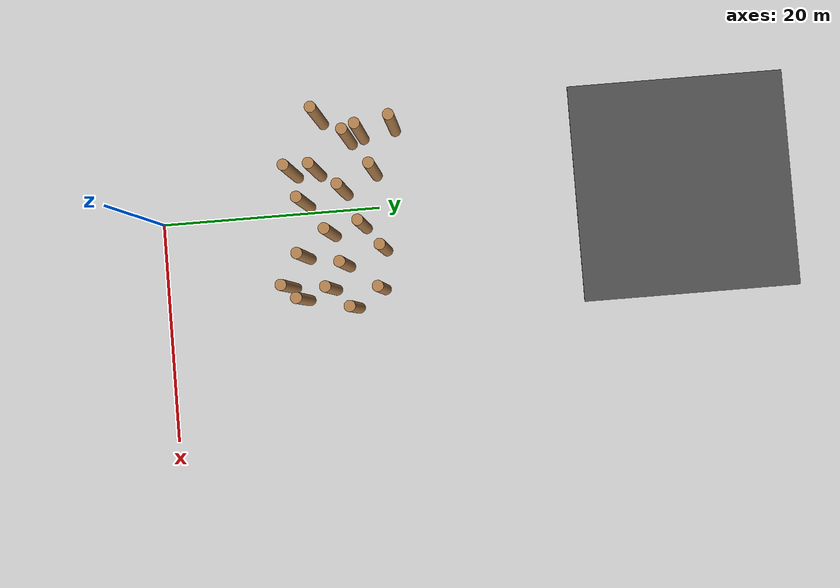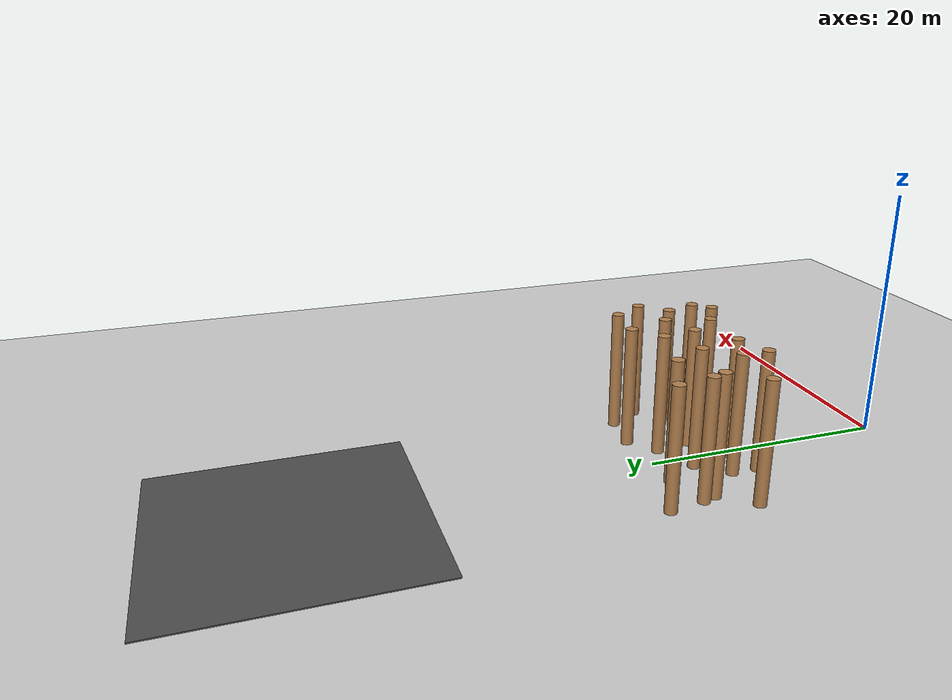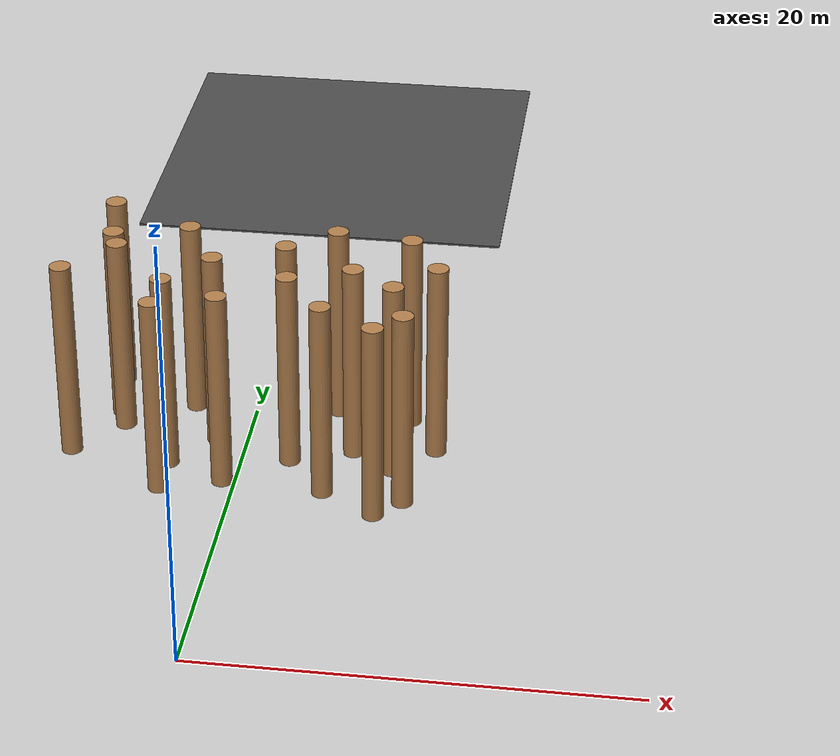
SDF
<sdf version="1.6">
 <world name="default">
  <model name="ground_plane">
   <static>1</static>
   <link name="link">
    <collision name="collision">
     <geometry><plane><normal>0 0 1</normal><size>100 100</size></plane></geometry>
     <surface><friction><ode><mu>100</mu><mu2>50</mu2></ode></friction></surface>
    </collision>
    <visual name="visual">
     <cast_shadows>0</cast_shadows>
     <geometry><plane><normal>0 0 1</normal><size>100 100</size></plane></geometry>
     <material>
      <script><uri>file://media/materials/scripts/gazebo.material</uri><name>Gazebo/Grey</name></script>
     </material>
    </visual>
   </link>
  </model>
  <model name="train_3">
   <link name="link_0_clone_0_clone_11_clone_8">
    <pose>-6.90192 1.15105 0.043478 0 -0 3e-06</pose>
    <inertial>
     <mass>1000</mass>
     <inertia><ixx>0.145833</ixx><ixy>0</ixy><ixz>0</ixz><iyy>0.145833</iyy><iyz>0</iyz><izz>0.125</izz></inertia>
    </inertial>
    <visual name="visual">
     <pose>0 0 4.5 0 -0 0</pose>
     <geometry><cylinder><radius>0.5</radius><length>10</length></cylinder></geometry>
     <material>
      <lighting>1</lighting>
      <script><uri>file://media/materials/scripts/gazebo.material</uri><name>Gazebo/WoodFloor</name></script>
      <ambient>0.3 0.3 0.3 1</ambient>
      <diffuse>0.7 0.7 0.7 1</diffuse>
      <specular>0.01 0.01 0.01 1</specular>
      <emissive>0 0 0 1</emissive>
      <shader type="vertex"><normal_map>__default__</normal_map></shader>
     </material>
    </visual>
    <collision name="collision">
     <pose>0 0 4.5 0 -0 0</pose>
     <geometry><cylinder><radius>0.5</radius><length>10</length></cylinder></geometry>
     <surface>
      <friction>
       <ode><mu>1</mu><mu2>1</mu2><fdir1>0 0 0</fdir1><slip1>0</slip1><slip2>0</slip2></ode>
       <torsional>
        <coefficient>1</coefficient>
        <patch_radius>0</patch_radius>
        <surface_radius>0</surface_radius>
        <use_patch_radius>1</use_patch_radius>
        <ode><slip>0</slip></ode>
       </torsional>
      </friction>
      <bounce><restitution_coefficient>0</restitution_coefficient><threshold>1e+06</threshold></bounce>
      <contact>
       <collide_without_contact>0</collide_without_contact>
       <collide_without_contact_bitmask>1</collide_without_contact_bitmask>
       <collide_bitmask>1</collide_bitmask>
       <ode>
        <soft_cfm>0</soft_cfm>
        <soft_erp>0.2</soft_erp>
        <kp>1e+13</kp>
        <kd>1</kd>
        <max_vel>0.01</max_vel>
        <min_depth>0</min_depth>
       </ode>
       <bullet>
        <split_impulse>1</split_impulse>
        <split_impulse_penetration_threshold>-0.01</split_impulse_penetration_threshold>
        <soft_cfm>0</soft_cfm>
        <soft_erp>0.2</soft_erp>
        <kp>1e+13</kp>
        <kd>1</kd>
       </bullet>
      </contact>
     </surface>
    </collision>
   </link>
   <link name="link_0_clone_0_clone_5_clone_12">
    <pose>3.06332 4.4517 0.043478 0 -0 3e-06</pose>
    <inertial>
     <mass>1000</mass>
     <inertia><ixx>0.145833</ixx><ixy>0</ixy><ixz>0</ixz><iyy>0.145833</iyy><iyz>0</iyz><izz>0.125</izz></inertia>
    </inertial>
    <visual name="visual">
     <pose>0 0 4.5 0 -0 0</pose>
     <geometry><cylinder><radius>0.5</radius><length>10</length></cylinder></geometry>
     <material>
      <lighting>1</lighting>
      <script><uri>file://media/materials/scripts/gazebo.material</uri><name>Gazebo/WoodFloor</name></script>
      <ambient>0.3 0.3 0.3 1</ambient>
      <diffuse>0.7 0.7 0.7 1</diffuse>
      <specular>0.01 0.01 0.01 1</specular>
      <emissive>0 0 0 1</emissive>
      <shader type="vertex"><normal_map>__default__</normal_map></shader>
     </material>
    </visual>
    <collision name="collision">
     <pose>0 0 4.5 0 -0 0</pose>
     <geometry><cylinder><radius>0.5</radius><length>10</length></cylinder></geometry>
     <surface>
      <friction>
       <ode><mu>1</mu><mu2>1</mu2><fdir1>0 0 0</fdir1><slip1>0</slip1><slip2>0</slip2></ode>
       <torsional>
        <coefficient>1</coefficient>
        <patch_radius>0</patch_radius>
        <surface_radius>0</surface_radius>
        <use_patch_radius>1</use_patch_radius>
        <ode><slip>0</slip></ode>
       </torsional>
      </friction>
      <bounce><restitution_coefficient>0</restitution_coefficient><threshold>1e+06</threshold></bounce>
      <contact>
       <collide_without_contact>0</collide_without_contact>
       <collide_without_contact_bitmask>1</collide_without_contact_bitmask>
       <collide_bitmask>1</collide_bitmask>
       <ode>
        <soft_cfm>0</soft_cfm>
        <soft_erp>0.2</soft_erp>
        <kp>1e+13</kp>
        <kd>1</kd>
        <max_vel>0.01</max_vel>
        <min_depth>0</min_depth>
       </ode>
       <bullet>
        <split_impulse>1</split_impulse>
        <split_impulse_penetration_threshold>-0.01</split_impulse_penetration_threshold>
        <soft_cfm>0</soft_cfm>
        <soft_erp>0.2</soft_erp>
        <kp>1e+13</kp>
        <kd>1</kd>
       </bullet>
      </contact>
     </surface>
    </collision>
   </link>
   <link name="link_0_clone_0_clone_5_clone_19_clone_10">
    <pose>-5.21019 4.79116 0.043478 0 -0 6e-06</pose>
    <inertial>
     <mass>1000</mass>
     <inertia><ixx>0.145833</ixx><ixy>0</ixy><ixz>0</ixz><iyy>0.145833</iyy><iyz>0</iyz><izz>0.125</izz></inertia>
    </inertial>
    <visual name="visual">
     <pose>0 0 4.5 0 -0 0</pose>
     <geometry><cylinder><radius>0.5</radius><length>10</length></cylinder></geometry>
     <material>
      <lighting>1</lighting>
      <script><uri>file://media/materials/scripts/gazebo.material</uri><name>Gazebo/WoodFloor</name></script>
      <ambient>0.3 0.3 0.3 1</ambient>
      <diffuse>0.7 0.7 0.7 1</diffuse>
      <specular>0.01 0.01 0.01 1</specular>
      <emissive>0 0 0 1</emissive>
      <shader type="vertex"><normal_map>__default__</normal_map></shader>
     </material>
    </visual>
    <collision name="collision">
     <pose>0 0 4.5 0 -0 0</pose>
     <geometry><cylinder><radius>0.5</radius><length>10</length></cylinder></geometry>
     <surface>
      <friction>
       <ode><mu>1</mu><mu2>1</mu2><fdir1>0 0 0</fdir1><slip1>0</slip1><slip2>0</slip2></ode>
       <torsional>
        <coefficient>1</coefficient>
        <patch_radius>0</patch_radius>
        <surface_radius>0</surface_radius>
        <use_patch_radius>1</use_patch_radius>
        <ode><slip>0</slip></ode>
       </torsional>
      </friction>
      <bounce><restitution_coefficient>0</restitution_coefficient><threshold>1e+06</threshold></bounce>
      <contact>
       <collide_without_contact>0</collide_without_contact>
       <collide_without_contact_bitmask>1</collide_without_contact_bitmask>
       <collide_bitmask>1</collide_bitmask>
       <ode>
        <soft_cfm>0</soft_cfm>
        <soft_erp>0.2</soft_erp>
        <kp>1e+13</kp>
        <kd>1</kd>
        <max_vel>0.01</max_vel>
        <min_depth>0</min_depth>
       </ode>
       <bullet>
        <split_impulse>1</split_impulse>
        <split_impulse_penetration_threshold>-0.01</split_impulse_penetration_threshold>
        <soft_cfm>0</soft_cfm>
        <soft_erp>0.2</soft_erp>
        <kp>1e+13</kp>
        <kd>1</kd>
       </bullet>
      </contact>
     </surface>
    </collision>
   </link>
   <link name="link_0_clone_0_clone_5_clone_19_clone_11">
    <pose>-4.81689 3.68 0.043478 0 -0 6e-06</pose>
    <inertial>
     <mass>1000</mass>
     <inertia><ixx>0.145833</ixx><ixy>0</ixy><ixz>0</ixz><iyy>0.145833</iyy><iyz>0</iyz><izz>0.125</izz></inertia>
    </inertial>
    <visual name="visual">
     <pose>0 0 4.5 0 -0 0</pose>
     <geometry><cylinder><radius>0.5</radius><length>10</length></cylinder></geometry>
     <material>
      <lighting>1</lighting>
      <script><uri>file://media/materials/scripts/gazebo.material</uri><name>Gazebo/WoodFloor</name></script>
      <ambient>0.3 0.3 0.3 1</ambient>
      <diffuse>0.7 0.7 0.7 1</diffuse>
      <specular>0.01 0.01 0.01 1</specular>
      <emissive>0 0 0 1</emissive>
      <shader type="vertex"><normal_map>__default__</normal_map></shader>
     </material>
    </visual>
    <collision name="collision">
     <pose>0 0 4.5 0 -0 0</pose>
     <geometry><cylinder><radius>0.5</radius><length>10</length></cylinder></geometry>
     <surface>
      <friction>
       <ode><mu>1</mu><mu2>1</mu2><fdir1>0 0 0</fdir1><slip1>0</slip1><slip2>0</slip2></ode>
       <torsional>
        <coefficient>1</coefficient>
        <patch_radius>0</patch_radius>
        <surface_radius>0</surface_radius>
        <use_patch_radius>1</use_patch_radius>
        <ode><slip>0</slip></ode>
       </torsional>
      </friction>
      <bounce><restitution_coefficient>0</restitution_coefficient><threshold>1e+06</threshold></bounce>
      <contact>
       <collide_without_contact>0</collide_without_contact>
       <collide_without_contact_bitmask>1</collide_without_contact_bitmask>
       <collide_bitmask>1</collide_bitmask>
       <ode>
        <soft_cfm>0</soft_cfm>
        <soft_erp>0.2</soft_erp>
        <kp>1e+13</kp>
        <kd>1</kd>
        <max_vel>0.01</max_vel>
        <min_depth>0</min_depth>
       </ode>
       <bullet>
        <split_impulse>1</split_impulse>
        <split_impulse_penetration_threshold>-0.01</split_impulse_penetration_threshold>
        <soft_cfm>0</soft_cfm>
        <soft_erp>0.2</soft_erp>
        <kp>1e+13</kp>
        <kd>1</kd>
       </bullet>
      </contact>
     </surface>
    </collision>
   </link>
   <link name="link_0_clone_0_clone_5_clone_19_clone_13">
    <pose>5.27392 6.1772 0.043478 0 -0 6e-06</pose>
    <inertial>
     <mass>1000</mass>
     <inertia><ixx>0.145833</ixx><ixy>0</ixy><ixz>0</ixz><iyy>0.145833</iyy><iyz>0</iyz><izz>0.125</izz></inertia>
    </inertial>
    <visual name="visual">
     <pose>0 0 4.5 0 -0 0</pose>
     <geometry><cylinder><radius>0.5</radius><length>10</length></cylinder></geometry>
     <material>
      <lighting>1</lighting>
      <script><uri>file://media/materials/scripts/gazebo.material</uri><name>Gazebo/WoodFloor</name></script>
      <ambient>0.3 0.3 0.3 1</ambient>
      <diffuse>0.7 0.7 0.7 1</diffuse>
      <specular>0.01 0.01 0.01 1</specular>
      <emissive>0 0 0 1</emissive>
      <shader type="vertex"><normal_map>__default__</normal_map></shader>
     </material>
    </visual>
    <collision name="collision">
     <pose>0 0 4.5 0 -0 0</pose>
     <geometry><cylinder><radius>0.5</radius><length>10</length></cylinder></geometry>
     <surface>
      <friction>
       <ode><mu>1</mu><mu2>1</mu2><fdir1>0 0 0</fdir1><slip1>0</slip1><slip2>0</slip2></ode>
       <torsional>
        <coefficient>1</coefficient>
        <patch_radius>0</patch_radius>
        <surface_radius>0</surface_radius>
        <use_patch_radius>1</use_patch_radius>
        <ode><slip>0</slip></ode>
       </torsional>
      </friction>
      <bounce><restitution_coefficient>0</restitution_coefficient><threshold>1e+06</threshold></bounce>
      <contact>
       <collide_without_contact>0</collide_without_contact>
       <collide_without_contact_bitmask>1</collide_without_contact_bitmask>
       <collide_bitmask>1</collide_bitmask>
       <ode>
        <soft_cfm>0</soft_cfm>
        <soft_erp>0.2</soft_erp>
        <kp>1e+13</kp>
        <kd>1</kd>
        <max_vel>0.01</max_vel>
        <min_depth>0</min_depth>
       </ode>
       <bullet>
        <split_impulse>1</split_impulse>
        <split_impulse_penetration_threshold>-0.01</split_impulse_penetration_threshold>
        <soft_cfm>0</soft_cfm>
        <soft_erp>0.2</soft_erp>
        <kp>1e+13</kp>
        <kd>1</kd>
       </bullet>
      </contact>
     </surface>
    </collision>
   </link>
   <link name="link_0_clone_0_clone_5_clone_19_clone_15">
    <pose>8.82989 5.75323 0.043478 0 -0 6e-06</pose>
    <inertial>
     <mass>1000</mass>
     <inertia><ixx>0.145833</ixx><ixy>0</ixy><ixz>0</ixz><iyy>0.145833</iyy><iyz>0</iyz><izz>0.125</izz></inertia>
    </inertial>
    <visual name="visual">
     <pose>0 0 4.5 0 -0 0</pose>
     <geometry><cylinder><radius>0.5</radius><length>10</length></cylinder></geometry>
     <material>
      <lighting>1</lighting>
      <script><uri>file://media/materials/scripts/gazebo.material</uri><name>Gazebo/WoodFloor</name></script>
      <ambient>0.3 0.3 0.3 1</ambient>
      <diffuse>0.7 0.7 0.7 1</diffuse>
      <specular>0.01 0.01 0.01 1</specular>
      <emissive>0 0 0 1</emissive>
      <shader type="vertex"><normal_map>__default__</normal_map></shader>
     </material>
    </visual>
    <collision name="collision">
     <pose>0 0 4.5 0 -0 0</pose>
     <geometry><cylinder><radius>0.5</radius><length>10</length></cylinder></geometry>
     <surface>
      <friction>
       <ode><mu>1</mu><mu2>1</mu2><fdir1>0 0 0</fdir1><slip1>0</slip1><slip2>0</slip2></ode>
       <torsional>
        <coefficient>1</coefficient>
        <patch_radius>0</patch_radius>
        <surface_radius>0</surface_radius>
        <use_patch_radius>1</use_patch_radius>
        <ode><slip>0</slip></ode>
       </torsional>
      </friction>
      <bounce><restitution_coefficient>0</restitution_coefficient><threshold>1e+06</threshold></bounce>
      <contact>
       <collide_without_contact>0</collide_without_contact>
       <collide_without_contact_bitmask>1</collide_without_contact_bitmask>
       <collide_bitmask>1</collide_bitmask>
       <ode>
        <soft_cfm>0</soft_cfm>
        <soft_erp>0.2</soft_erp>
        <kp>1e+13</kp>
        <kd>1</kd>
        <max_vel>0.01</max_vel>
        <min_depth>0</min_depth>
       </ode>
       <bullet>
        <split_impulse>1</split_impulse>
        <split_impulse_penetration_threshold>-0.01</split_impulse_penetration_threshold>
        <soft_cfm>0</soft_cfm>
        <soft_erp>0.2</soft_erp>
        <kp>1e+13</kp>
        <kd>1</kd>
       </bullet>
      </contact>
     </surface>
    </collision>
   </link>
   <link name="link_0_clone_0_clone_5_clone_19_clone_18">
    <pose>10.335 3.24333 0.043478 0 -0 6e-06</pose>
    <inertial>
     <mass>1000</mass>
     <inertia><ixx>0.145833</ixx><ixy>0</ixy><ixz>0</ixz><iyy>0.145833</iyy><iyz>0</iyz><izz>0.125</izz></inertia>
    </inertial>
    <visual name="visual">
     <pose>0 0 4.5 0 -0 0</pose>
     <geometry><cylinder><radius>0.5</radius><length>10</length></cylinder></geometry>
     <material>
      <lighting>1</lighting>
      <script><uri>file://media/materials/scripts/gazebo.material</uri><name>Gazebo/WoodFloor</name></script>
      <ambient>0.3 0.3 0.3 1</ambient>
      <diffuse>0.7 0.7 0.7 1</diffuse>
      <specular>0.01 0.01 0.01 1</specular>
      <emissive>0 0 0 1</emissive>
      <shader type="vertex"><normal_map>__default__</normal_map></shader>
     </material>
    </visual>
    <collision name="collision">
     <pose>0 0 4.5 0 -0 0</pose>
     <geometry><cylinder><radius>0.5</radius><length>10</length></cylinder></geometry>
     <surface>
      <friction>
       <ode><mu>1</mu><mu2>1</mu2><fdir1>0 0 0</fdir1><slip1>0</slip1><slip2>0</slip2></ode>
       <torsional>
        <coefficient>1</coefficient>
        <patch_radius>0</patch_radius>
        <surface_radius>0</surface_radius>
        <use_patch_radius>1</use_patch_radius>
        <ode><slip>0</slip></ode>
       </torsional>
      </friction>
      <bounce><restitution_coefficient>0</restitution_coefficient><threshold>1e+06</threshold></bounce>
      <contact>
       <collide_without_contact>0</collide_without_contact>
       <collide_without_contact_bitmask>1</collide_without_contact_bitmask>
       <collide_bitmask>1</collide_bitmask>
       <ode>
        <soft_cfm>0</soft_cfm>
        <soft_erp>0.2</soft_erp>
        <kp>1e+13</kp>
        <kd>1</kd>
        <max_vel>0.01</max_vel>
        <min_depth>0</min_depth>
       </ode>
       <bullet>
        <split_impulse>1</split_impulse>
        <split_impulse_penetration_threshold>-0.01</split_impulse_penetration_threshold>
        <soft_cfm>0</soft_cfm>
        <soft_erp>0.2</soft_erp>
        <kp>1e+13</kp>
        <kd>1</kd>
       </bullet>
      </contact>
     </surface>
    </collision>
   </link>
   <link name="link_0_clone_0_clone_5_clone_19_clone_31">
    <pose>9.27394 -1.24677 0.043478 0 -0 6e-06</pose>
    <inertial>
     <mass>1000</mass>
     <inertia><ixx>0.145833</ixx><ixy>0</ixy><ixz>0</ixz><iyy>0.145833</iyy><iyz>0</iyz><izz>0.125</izz></inertia>
    </inertial>
    <visual name="visual">
     <pose>0 0 4.5 0 -0 0</pose>
     <geometry><cylinder><radius>0.5</radius><length>10</length></cylinder></geometry>
     <material>
      <lighting>1</lighting>
      <script><uri>file://media/materials/scripts/gazebo.material</uri><name>Gazebo/WoodFloor</name></script>
      <ambient>0.3 0.3 0.3 1</ambient>
      <diffuse>0.7 0.7 0.7 1</diffuse>
      <specular>0.01 0.01 0.01 1</specular>
      <emissive>0 0 0 1</emissive>
      <shader type="vertex"><normal_map>__default__</normal_map></shader>
     </material>
    </visual>
    <collision name="collision">
     <pose>0 0 4.5 0 -0 0</pose>
     <geometry><cylinder><radius>0.5</radius><length>10</length></cylinder></geometry>
     <surface>
      <friction>
       <ode><mu>1</mu><mu2>1</mu2><fdir1>0 0 0</fdir1><slip1>0</slip1><slip2>0</slip2></ode>
       <torsional>
        <coefficient>1</coefficient>
        <patch_radius>0</patch_radius>
        <surface_radius>0</surface_radius>
        <use_patch_radius>1</use_patch_radius>
        <ode><slip>0</slip></ode>
       </torsional>
      </friction>
      <bounce><restitution_coefficient>0</restitution_coefficient><threshold>1e+06</threshold></bounce>
      <contact>
       <collide_without_contact>0</collide_without_contact>
       <collide_without_contact_bitmask>1</collide_without_contact_bitmask>
       <collide_bitmask>1</collide_bitmask>
       <ode>
        <soft_cfm>0</soft_cfm>
        <soft_erp>0.2</soft_erp>
        <kp>1e+13</kp>
        <kd>1</kd>
        <max_vel>0.01</max_vel>
        <min_depth>0</min_depth>
       </ode>
       <bullet>
        <split_impulse>1</split_impulse>
        <split_impulse_penetration_threshold>-0.01</split_impulse_penetration_threshold>
        <soft_cfm>0</soft_cfm>
        <soft_erp>0.2</soft_erp>
        <kp>1e+13</kp>
        <kd>1</kd>
       </bullet>
      </contact>
     </surface>
    </collision>
   </link>
   <link name="link_0_clone_0_clone_5_clone_19_clone_32">
    <pose>8.50917 1.28403 0.043478 0 -0 6e-06</pose>
    <inertial>
     <mass>1000</mass>
     <inertia><ixx>0.145833</ixx><ixy>0</ixy><ixz>0</ixz><iyy>0.145833</iyy><iyz>0</iyz><izz>0.125</izz></inertia>
    </inertial>
    <visual name="visual">
     <pose>0 0 4.5 0 -0 0</pose>
     <geometry><cylinder><radius>0.5</radius><length>10</length></cylinder></geometry>
     <material>
      <lighting>1</lighting>
      <script><uri>file://media/materials/scripts/gazebo.material</uri><name>Gazebo/WoodFloor</name></script>
      <ambient>0.3 0.3 0.3 1</ambient>
      <diffuse>0.7 0.7 0.7 1</diffuse>
      <specular>0.01 0.01 0.01 1</specular>
      <emissive>0 0 0 1</emissive>
      <shader type="vertex"><normal_map>__default__</normal_map></shader>
     </material>
    </visual>
    <collision name="collision">
     <pose>0 0 4.5 0 -0 0</pose>
     <geometry><cylinder><radius>0.5</radius><length>10</length></cylinder></geometry>
     <surface>
      <friction>
       <ode><mu>1</mu><mu2>1</mu2><fdir1>0 0 0</fdir1><slip1>0</slip1><slip2>0</slip2></ode>
       <torsional>
        <coefficient>1</coefficient>
        <patch_radius>0</patch_radius>
        <surface_radius>0</surface_radius>
        <use_patch_radius>1</use_patch_radius>
        <ode><slip>0</slip></ode>
       </torsional>
      </friction>
      <bounce><restitution_coefficient>0</restitution_coefficient><threshold>1e+06</threshold></bounce>
      <contact>
       <collide_without_contact>0</collide_without_contact>
       <collide_without_contact_bitmask>1</collide_without_contact_bitmask>
       <collide_bitmask>1</collide_bitmask>
       <ode>
        <soft_cfm>0</soft_cfm>
        <soft_erp>0.2</soft_erp>
        <kp>1e+13</kp>
        <kd>1</kd>
        <max_vel>0.01</max_vel>
        <min_depth>0</min_depth>
       </ode>
       <bullet>
        <split_impulse>1</split_impulse>
        <split_impulse_penetration_threshold>-0.01</split_impulse_penetration_threshold>
        <soft_cfm>0</soft_cfm>
        <soft_erp>0.2</soft_erp>
        <kp>1e+13</kp>
        <kd>1</kd>
       </bullet>
      </contact>
     </surface>
    </collision>
   </link>
   <link name="link_0_clone_0_clone_5_clone_21">
    <pose>0.690093 -0.614865 0.043478 0 -0 3e-06</pose>
    <inertial>
     <mass>1000</mass>
     <inertia><ixx>0.145833</ixx><ixy>0</ixy><ixz>0</ixz><iyy>0.145833</iyy><iyz>0</iyz><izz>0.125</izz></inertia>
    </inertial>
    <visual name="visual">
     <pose>0 0 4.5 0 -0 0</pose>
     <geometry><cylinder><radius>0.5</radius><length>10</length></cylinder></geometry>
     <material>
      <lighting>1</lighting>
      <script><uri>file://media/materials/scripts/gazebo.material</uri><name>Gazebo/WoodFloor</name></script>
      <ambient>0.3 0.3 0.3 1</ambient>
      <diffuse>0.7 0.7 0.7 1</diffuse>
      <specular>0.01 0.01 0.01 1</specular>
      <emissive>0 0 0 1</emissive>
      <shader type="vertex"><normal_map>__default__</normal_map></shader>
     </material>
    </visual>
    <collision name="collision">
     <pose>0 0 4.5 0 -0 0</pose>
     <geometry><cylinder><radius>0.5</radius><length>10</length></cylinder></geometry>
     <surface>
      <friction>
       <ode><mu>1</mu><mu2>1</mu2><fdir1>0 0 0</fdir1><slip1>0</slip1><slip2>0</slip2></ode>
       <torsional>
        <coefficient>1</coefficient>
        <patch_radius>0</patch_radius>
        <surface_radius>0</surface_radius>
        <use_patch_radius>1</use_patch_radius>
        <ode><slip>0</slip></ode>
       </torsional>
      </friction>
      <bounce><restitution_coefficient>0</restitution_coefficient><threshold>1e+06</threshold></bounce>
      <contact>
       <collide_without_contact>0</collide_without_contact>
       <collide_without_contact_bitmask>1</collide_without_contact_bitmask>
       <collide_bitmask>1</collide_bitmask>
       <ode>
        <soft_cfm>0</soft_cfm>
        <soft_erp>0.2</soft_erp>
        <kp>1e+13</kp>
        <kd>1</kd>
        <max_vel>0.01</max_vel>
        <min_depth>0</min_depth>
       </ode>
       <bullet>
        <split_impulse>1</split_impulse>
        <split_impulse_penetration_threshold>-0.01</split_impulse_penetration_threshold>
        <soft_cfm>0</soft_cfm>
        <soft_erp>0.2</soft_erp>
        <kp>1e+13</kp>
        <kd>1</kd>
       </bullet>
      </contact>
     </surface>
    </collision>
   </link>
   <link name="link_0_clone_0_clone_5_clone_22">
    <pose>8.06962 -2.47589 0.043478 0 -0 3e-06</pose>
    <inertial>
     <mass>1000</mass>
     <inertia><ixx>0.145833</ixx><ixy>0</ixy><ixz>0</ixz><iyy>0.145833</iyy><iyz>0</iyz><izz>0.125</izz></inertia>
    </inertial>
    <visual name="visual">
     <pose>0 0 4.5 0 -0 0</pose>
     <geometry><cylinder><radius>0.5</radius><length>10</length></cylinder></geometry>
     <material>
      <lighting>1</lighting>
      <script><uri>file://media/materials/scripts/gazebo.material</uri><name>Gazebo/WoodFloor</name></script>
      <ambient>0.3 0.3 0.3 1</ambient>
      <diffuse>0.7 0.7 0.7 1</diffuse>
      <specular>0.01 0.01 0.01 1</specular>
      <emissive>0 0 0 1</emissive>
      <shader type="vertex"><normal_map>__default__</normal_map></shader>
     </material>
    </visual>
    <collision name="collision">
     <pose>0 0 4.5 0 -0 0</pose>
     <geometry><cylinder><radius>0.5</radius><length>10</length></cylinder></geometry>
     <surface>
      <friction>
       <ode><mu>1</mu><mu2>1</mu2><fdir1>0 0 0</fdir1><slip1>0</slip1><slip2>0</slip2></ode>
       <torsional>
        <coefficient>1</coefficient>
        <patch_radius>0</patch_radius>
        <surface_radius>0</surface_radius>
        <use_patch_radius>1</use_patch_radius>
        <ode><slip>0</slip></ode>
       </torsional>
      </friction>
      <bounce><restitution_coefficient>0</restitution_coefficient><threshold>1e+06</threshold></bounce>
      <contact>
       <collide_without_contact>0</collide_without_contact>
       <collide_without_contact_bitmask>1</collide_without_contact_bitmask>
       <collide_bitmask>1</collide_bitmask>
       <ode>
        <soft_cfm>0</soft_cfm>
        <soft_erp>0.2</soft_erp>
        <kp>1e+13</kp>
        <kd>1</kd>
        <max_vel>0.01</max_vel>
        <min_depth>0</min_depth>
       </ode>
       <bullet>
        <split_impulse>1</split_impulse>
        <split_impulse_penetration_threshold>-0.01</split_impulse_penetration_threshold>
        <soft_cfm>0</soft_cfm>
        <soft_erp>0.2</soft_erp>
        <kp>1e+13</kp>
        <kd>1</kd>
       </bullet>
      </contact>
     </surface>
    </collision>
   </link>
   <link name="link_0_clone_0_clone_5_clone_6">
    <pose>-2.10439 0.622832 0.043478 0 -0 3e-06</pose>
    <inertial>
     <mass>1000</mass>
     <inertia><ixx>0.145833</ixx><ixy>0</ixy><ixz>0</ixz><iyy>0.145833</iyy><iyz>0</iyz><izz>0.125</izz></inertia>
    </inertial>
    <visual name="visual">
     <pose>0 0 4.5 0 -0 0</pose>
     <geometry><cylinder><radius>0.5</radius><length>10</length></cylinder></geometry>
     <material>
      <lighting>1</lighting>
      <script><uri>file://media/materials/scripts/gazebo.material</uri><name>Gazebo/WoodFloor</name></script>
      <ambient>0.3 0.3 0.3 1</ambient>
      <diffuse>0.7 0.7 0.7 1</diffuse>
      <specular>0.01 0.01 0.01 1</specular>
      <emissive>0 0 0 1</emissive>
      <shader type="vertex"><normal_map>__default__</normal_map></shader>
     </material>
    </visual>
    <collision name="collision">
     <pose>0 0 4.5 0 -0 0</pose>
     <geometry><cylinder><radius>0.5</radius><length>10</length></cylinder></geometry>
     <surface>
      <friction>
       <ode><mu>1</mu><mu2>1</mu2><fdir1>0 0 0</fdir1><slip1>0</slip1><slip2>0</slip2></ode>
       <torsional>
        <coefficient>1</coefficient>
        <patch_radius>0</patch_radius>
        <surface_radius>0</surface_radius>
        <use_patch_radius>1</use_patch_radius>
        <ode><slip>0</slip></ode>
       </torsional>
      </friction>
      <bounce><restitution_coefficient>0</restitution_coefficient><threshold>1e+06</threshold></bounce>
      <contact>
       <collide_without_contact>0</collide_without_contact>
       <collide_without_contact_bitmask>1</collide_without_contact_bitmask>
       <collide_bitmask>1</collide_bitmask>
       <ode>
        <soft_cfm>0</soft_cfm>
        <soft_erp>0.2</soft_erp>
        <kp>1e+13</kp>
        <kd>1</kd>
        <max_vel>0.01</max_vel>
        <min_depth>0</min_depth>
       </ode>
       <bullet>
        <split_impulse>1</split_impulse>
        <split_impulse_penetration_threshold>-0.01</split_impulse_penetration_threshold>
        <soft_cfm>0</soft_cfm>
        <soft_erp>0.2</soft_erp>
        <kp>1e+13</kp>
        <kd>1</kd>
       </bullet>
      </contact>
     </surface>
    </collision>
   </link>
   <link name="link_0_clone_0_clone_5_clone_6_clone_11">
    <pose>6.46647 2.65582 0.043478 0 -0 6e-06</pose>
    <inertial>
     <mass>1000</mass>
     <inertia><ixx>0.145833</ixx><ixy>0</ixy><ixz>0</ixz><iyy>0.145833</iyy><iyz>0</iyz><izz>0.125</izz></inertia>
    </inertial>
    <visual name="visual">
     <pose>0 0 4.5 0 -0 0</pose>
     <geometry><cylinder><radius>0.5</radius><length>10</length></cylinder></geometry>
     <material>
      <lighting>1</lighting>
      <script><uri>file://media/materials/scripts/gazebo.material</uri><name>Gazebo/WoodFloor</name></script>
      <ambient>0.3 0.3 0.3 1</ambient>
      <diffuse>0.7 0.7 0.7 1</diffuse>
      <specular>0.01 0.01 0.01 1</specular>
      <emissive>0 0 0 1</emissive>
      <shader type="vertex"><normal_map>__default__</normal_map></shader>
     </material>
    </visual>
    <collision name="collision">
     <pose>0 0 4.5 0 -0 0</pose>
     <geometry><cylinder><radius>0.5</radius><length>10</length></cylinder></geometry>
     <surface>
      <friction>
       <ode><mu>1</mu><mu2>1</mu2><fdir1>0 0 0</fdir1><slip1>0</slip1><slip2>0</slip2></ode>
       <torsional>
        <coefficient>1</coefficient>
        <patch_radius>0</patch_radius>
        <surface_radius>0</surface_radius>
        <use_patch_radius>1</use_patch_radius>
        <ode><slip>0</slip></ode>
       </torsional>
      </friction>
      <bounce><restitution_coefficient>0</restitution_coefficient><threshold>1e+06</threshold></bounce>
      <contact>
       <collide_without_contact>0</collide_without_contact>
       <collide_without_contact_bitmask>1</collide_without_contact_bitmask>
       <collide_bitmask>1</collide_bitmask>
       <ode>
        <soft_cfm>0</soft_cfm>
        <soft_erp>0.2</soft_erp>
        <kp>1e+13</kp>
        <kd>1</kd>
        <max_vel>0.01</max_vel>
        <min_depth>0</min_depth>
       </ode>
       <bullet>
        <split_impulse>1</split_impulse>
        <split_impulse_penetration_threshold>-0.01</split_impulse_penetration_threshold>
        <soft_cfm>0</soft_cfm>
        <soft_erp>0.2</soft_erp>
        <kp>1e+13</kp>
        <kd>1</kd>
       </bullet>
      </contact>
     </surface>
    </collision>
   </link>
   <link name="link_0_clone_0_clone_5_clone_6_clone_12">
    <pose>3.56406 1.54146 0.043478 0 -0 6e-06</pose>
    <inertial>
     <mass>1000</mass>
     <inertia><ixx>0.145833</ixx><ixy>0</ixy><ixz>0</ixz><iyy>0.145833</iyy><iyz>0</iyz><izz>0.125</izz></inertia>
    </inertial>
    <visual name="visual">
     <pose>0 0 4.5 0 -0 0</pose>
     <geometry><cylinder><radius>0.5</radius><length>10</length></cylinder></geometry>
     <material>
      <lighting>1</lighting>
      <script><uri>file://media/materials/scripts/gazebo.material</uri><name>Gazebo/WoodFloor</name></script>
      <ambient>0.3 0.3 0.3 1</ambient>
      <diffuse>0.7 0.7 0.7 1</diffuse>
      <specular>0.01 0.01 0.01 1</specular>
      <emissive>0 0 0 1</emissive>
      <shader type="vertex"><normal_map>__default__</normal_map></shader>
     </material>
    </visual>
    <collision name="collision">
     <pose>0 0 4.5 0 -0 0</pose>
     <geometry><cylinder><radius>0.5</radius><length>10</length></cylinder></geometry>
     <surface>
      <friction>
       <ode><mu>1</mu><mu2>1</mu2><fdir1>0 0 0</fdir1><slip1>0</slip1><slip2>0</slip2></ode>
       <torsional>
        <coefficient>1</coefficient>
        <patch_radius>0</patch_radius>
        <surface_radius>0</surface_radius>
        <use_patch_radius>1</use_patch_radius>
        <ode><slip>0</slip></ode>
       </torsional>
      </friction>
      <bounce><restitution_coefficient>0</restitution_coefficient><threshold>1e+06</threshold></bounce>
      <contact>
       <collide_without_contact>0</collide_without_contact>
       <collide_without_contact_bitmask>1</collide_without_contact_bitmask>
       <collide_bitmask>1</collide_bitmask>
       <ode>
        <soft_cfm>0</soft_cfm>
        <soft_erp>0.2</soft_erp>
        <kp>1e+13</kp>
        <kd>1</kd>
        <max_vel>0.01</max_vel>
        <min_depth>0</min_depth>
       </ode>
       <bullet>
        <split_impulse>1</split_impulse>
        <split_impulse_penetration_threshold>-0.01</split_impulse_penetration_threshold>
        <soft_cfm>0</soft_cfm>
        <soft_erp>0.2</soft_erp>
        <kp>1e+13</kp>
        <kd>1</kd>
       </bullet>
      </contact>
     </surface>
    </collision>
   </link>
   <link name="link_0_clone_0_clone_5_clone_6_clone_13">
    <pose>-1.72608 5.75319 0.043478 0 -0 6e-06</pose>
    <inertial>
     <mass>1000</mass>
     <inertia><ixx>0.145833</ixx><ixy>0</ixy><ixz>0</ixz><iyy>0.145833</iyy><iyz>0</iyz><izz>0.125</izz></inertia>
    </inertial>
    <visual name="visual">
     <pose>0 0 4.5 0 -0 0</pose>
     <geometry><cylinder><radius>0.5</radius><length>10</length></cylinder></geometry>
     <material>
      <lighting>1</lighting>
      <script><uri>file://media/materials/scripts/gazebo.material</uri><name>Gazebo/WoodFloor</name></script>
      <ambient>0.3 0.3 0.3 1</ambient>
      <diffuse>0.7 0.7 0.7 1</diffuse>
      <specular>0.01 0.01 0.01 1</specular>
      <emissive>0 0 0 1</emissive>
      <shader type="vertex"><normal_map>__default__</normal_map></shader>
     </material>
    </visual>
    <collision name="collision">
     <pose>0 0 4.5 0 -0 0</pose>
     <geometry><cylinder><radius>0.5</radius><length>10</length></cylinder></geometry>
     <surface>
      <friction>
       <ode><mu>1</mu><mu2>1</mu2><fdir1>0 0 0</fdir1><slip1>0</slip1><slip2>0</slip2></ode>
       <torsional>
        <coefficient>1</coefficient>
        <patch_radius>0</patch_radius>
        <surface_radius>0</surface_radius>
        <use_patch_radius>1</use_patch_radius>
        <ode><slip>0</slip></ode>
       </torsional>
      </friction>
      <bounce><restitution_coefficient>0</restitution_coefficient><threshold>1e+06</threshold></bounce>
      <contact>
       <collide_without_contact>0</collide_without_contact>
       <collide_without_contact_bitmask>1</collide_without_contact_bitmask>
       <collide_bitmask>1</collide_bitmask>
       <ode>
        <soft_cfm>0</soft_cfm>
        <soft_erp>0.2</soft_erp>
        <kp>1e+13</kp>
        <kd>1</kd>
        <max_vel>0.01</max_vel>
        <min_depth>0</min_depth>
       </ode>
       <bullet>
        <split_impulse>1</split_impulse>
        <split_impulse_penetration_threshold>-0.01</split_impulse_penetration_threshold>
        <soft_cfm>0</soft_cfm>
        <soft_erp>0.2</soft_erp>
        <kp>1e+13</kp>
        <kd>1</kd>
       </bullet>
      </contact>
     </surface>
    </collision>
   </link>
   <link name="link_0_clone_0_clone_5_clone_6_clone_19">
    <pose>-0.161254 2.9232 0.043478 0 -0 6e-06</pose>
    <inertial>
     <mass>1000</mass>
     <inertia><ixx>0.145833</ixx><ixy>0</ixy><ixz>0</ixz><iyy>0.145833</iyy><iyz>0</iyz><izz>0.125</izz></inertia>
    </inertial>
    <visual name="visual">
     <pose>0 0 4.5 0 -0 0</pose>
     <geometry><cylinder><radius>0.5</radius><length>10</length></cylinder></geometry>
     <material>
      <lighting>1</lighting>
      <script><uri>file://media/materials/scripts/gazebo.material</uri><name>Gazebo/WoodFloor</name></script>
      <ambient>0.3 0.3 0.3 1</ambient>
      <diffuse>0.7 0.7 0.7 1</diffuse>
      <specular>0.01 0.01 0.01 1</specular>
      <emissive>0 0 0 1</emissive>
      <shader type="vertex"><normal_map>__default__</normal_map></shader>
     </material>
    </visual>
    <collision name="collision">
     <pose>0 0 4.5 0 -0 0</pose>
     <geometry><cylinder><radius>0.5</radius><length>10</length></cylinder></geometry>
     <surface>
      <friction>
       <ode><mu>1</mu><mu2>1</mu2><fdir1>0 0 0</fdir1><slip1>0</slip1><slip2>0</slip2></ode>
       <torsional>
        <coefficient>1</coefficient>
        <patch_radius>0</patch_radius>
        <surface_radius>0</surface_radius>
        <use_patch_radius>1</use_patch_radius>
        <ode><slip>0</slip></ode>
       </torsional>
      </friction>
      <bounce><restitution_coefficient>0</restitution_coefficient><threshold>1e+06</threshold></bounce>
      <contact>
       <collide_without_contact>0</collide_without_contact>
       <collide_without_contact_bitmask>1</collide_without_contact_bitmask>
       <collide_bitmask>1</collide_bitmask>
       <ode>
        <soft_cfm>0</soft_cfm>
        <soft_erp>0.2</soft_erp>
        <kp>1e+13</kp>
        <kd>1</kd>
        <max_vel>0.01</max_vel>
        <min_depth>0</min_depth>
       </ode>
       <bullet>
        <split_impulse>1</split_impulse>
        <split_impulse_penetration_threshold>-0.01</split_impulse_penetration_threshold>
        <soft_cfm>0</soft_cfm>
        <soft_erp>0.2</soft_erp>
        <kp>1e+13</kp>
        <kd>1</kd>
       </bullet>
      </contact>
     </surface>
    </collision>
   </link>
   <link name="link_0_clone_0_clone_5_clone_6_clone_4">
    <pose>5.47641 -0.929652 0.043478 0 -0 6e-06</pose>
    <inertial>
     <mass>1000</mass>
     <inertia><ixx>0.145833</ixx><ixy>0</ixy><ixz>0</ixz><iyy>0.145833</iyy><iyz>0</iyz><izz>0.125</izz></inertia>
    </inertial>
    <visual name="visual">
     <pose>0 0 4.5 0 -0 0</pose>
     <geometry><cylinder><radius>0.5</radius><length>10</length></cylinder></geometry>
     <material>
      <lighting>1</lighting>
      <script><uri>file://media/materials/scripts/gazebo.material</uri><name>Gazebo/WoodFloor</name></script>
      <ambient>0.3 0.3 0.3 1</ambient>
      <diffuse>0.7 0.7 0.7 1</diffuse>
      <specular>0.01 0.01 0.01 1</specular>
      <emissive>0 0 0 1</emissive>
      <shader type="vertex"><normal_map>__default__</normal_map></shader>
     </material>
    </visual>
    <collision name="collision">
     <pose>0 0 4.5 0 -0 0</pose>
     <geometry><cylinder><radius>0.5</radius><length>10</length></cylinder></geometry>
     <surface>
      <friction>
       <ode><mu>1</mu><mu2>1</mu2><fdir1>0 0 0</fdir1><slip1>0</slip1><slip2>0</slip2></ode>
       <torsional>
        <coefficient>1</coefficient>
        <patch_radius>0</patch_radius>
        <surface_radius>0</surface_radius>
        <use_patch_radius>1</use_patch_radius>
        <ode><slip>0</slip></ode>
       </torsional>
      </friction>
      <bounce><restitution_coefficient>0</restitution_coefficient><threshold>1e+06</threshold></bounce>
      <contact>
       <collide_without_contact>0</collide_without_contact>
       <collide_without_contact_bitmask>1</collide_without_contact_bitmask>
       <collide_bitmask>1</collide_bitmask>
       <ode>
        <soft_cfm>0</soft_cfm>
        <soft_erp>0.2</soft_erp>
        <kp>1e+13</kp>
        <kd>1</kd>
        <max_vel>0.01</max_vel>
        <min_depth>0</min_depth>
       </ode>
       <bullet>
        <split_impulse>1</split_impulse>
        <split_impulse_penetration_threshold>-0.01</split_impulse_penetration_threshold>
        <soft_cfm>0</soft_cfm>
        <soft_erp>0.2</soft_erp>
        <kp>1e+13</kp>
        <kd>1</kd>
       </bullet>
      </contact>
     </surface>
    </collision>
   </link>
   <link name="link_0_clone_0_clone_5_clone_6_clone_7">
    <pose>-2.1415 -1.53163 0.043478 0 -0 6e-06</pose>
    <inertial>
     <mass>1000</mass>
     <inertia><ixx>0.145833</ixx><ixy>0</ixy><ixz>0</ixz><iyy>0.145833</iyy><iyz>0</iyz><izz>0.125</izz></inertia>
    </inertial>
    <visual name="visual">
     <pose>0 0 4.5 0 -0 0</pose>
     <geometry><cylinder><radius>0.5</radius><length>10</length></cylinder></geometry>
     <material>
      <lighting>1</lighting>
      <script><uri>file://media/materials/scripts/gazebo.material</uri><name>Gazebo/WoodFloor</name></script>
      <ambient>0.3 0.3 0.3 1</ambient>
      <diffuse>0.7 0.7 0.7 1</diffuse>
      <specular>0.01 0.01 0.01 1</specular>
      <emissive>0 0 0 1</emissive>
      <shader type="vertex"><normal_map>__default__</normal_map></shader>
     </material>
    </visual>
    <collision name="collision">
     <pose>0 0 4.5 0 -0 0</pose>
     <geometry><cylinder><radius>0.5</radius><length>10</length></cylinder></geometry>
     <surface>
      <friction>
       <ode><mu>1</mu><mu2>1</mu2><fdir1>0 0 0</fdir1><slip1>0</slip1><slip2>0</slip2></ode>
       <torsional>
        <coefficient>1</coefficient>
        <patch_radius>0</patch_radius>
        <surface_radius>0</surface_radius>
        <use_patch_radius>1</use_patch_radius>
        <ode><slip>0</slip></ode>
       </torsional>
      </friction>
      <bounce><restitution_coefficient>0</restitution_coefficient><threshold>1e+06</threshold></bounce>
      <contact>
       <collide_without_contact>0</collide_without_contact>
       <collide_without_contact_bitmask>1</collide_without_contact_bitmask>
       <collide_bitmask>1</collide_bitmask>
       <ode>
        <soft_cfm>0</soft_cfm>
        <soft_erp>0.2</soft_erp>
        <kp>1e+13</kp>
        <kd>1</kd>
        <max_vel>0.01</max_vel>
        <min_depth>0</min_depth>
       </ode>
       <bullet>
        <split_impulse>1</split_impulse>
        <split_impulse_penetration_threshold>-0.01</split_impulse_penetration_threshold>
        <soft_cfm>0</soft_cfm>
        <soft_erp>0.2</soft_erp>
        <kp>1e+13</kp>
        <kd>1</kd>
       </bullet>
      </contact>
     </surface>
    </collision>
   </link>
   <link name="link_0_clone_0_clone_5_clone_7">
    <pose>-5.72608 7.75318 0.043478 0 -0 3e-06</pose>
    <inertial>
     <mass>1000</mass>
     <inertia><ixx>0.145833</ixx><ixy>0</ixy><ixz>0</ixz><iyy>0.145833</iyy><iyz>0</iyz><izz>0.125</izz></inertia>
    </inertial>
    <visual name="visual">
     <pose>0 0 4.5 0 -0 0</pose>
     <geometry><cylinder><radius>0.5</radius><length>10</length></cylinder></geometry>
     <material>
      <lighting>1</lighting>
      <script><uri>file://media/materials/scripts/gazebo.material</uri><name>Gazebo/WoodFloor</name></script>
      <ambient>0.3 0.3 0.3 1</ambient>
      <diffuse>0.7 0.7 0.7 1</diffuse>
      <specular>0.01 0.01 0.01 1</specular>
      <emissive>0 0 0 1</emissive>
      <shader type="vertex"><normal_map>__default__</normal_map></shader>
     </material>
    </visual>
    <collision name="collision">
     <pose>0 0 4.5 0 -0 0</pose>
     <geometry><cylinder><radius>0.5</radius><length>10</length></cylinder></geometry>
     <surface>
      <friction>
       <ode><mu>1</mu><mu2>1</mu2><fdir1>0 0 0</fdir1><slip1>0</slip1><slip2>0</slip2></ode>
       <torsional>
        <coefficient>1</coefficient>
        <patch_radius>0</patch_radius>
        <surface_radius>0</surface_radius>
        <use_patch_radius>1</use_patch_radius>
        <ode><slip>0</slip></ode>
       </torsional>
      </friction>
      <bounce><restitution_coefficient>0</restitution_coefficient><threshold>1e+06</threshold></bounce>
      <contact>
       <collide_without_contact>0</collide_without_contact>
       <collide_without_contact_bitmask>1</collide_without_contact_bitmask>
       <collide_bitmask>1</collide_bitmask>
       <ode>
        <soft_cfm>0</soft_cfm>
        <soft_erp>0.2</soft_erp>
        <kp>1e+13</kp>
        <kd>1</kd>
        <max_vel>0.01</max_vel>
        <min_depth>0</min_depth>
       </ode>
       <bullet>
        <split_impulse>1</split_impulse>
        <split_impulse_penetration_threshold>-0.01</split_impulse_penetration_threshold>
        <soft_cfm>0</soft_cfm>
        <soft_erp>0.2</soft_erp>
        <kp>1e+13</kp>
        <kd>1</kd>
       </bullet>
      </contact>
     </surface>
    </collision>
   </link>
   <static>1</static>
   <pose>-1.27394 14.2468 0.506522 0 0 -3e-06</pose>
  </model>
  <model name="asphalt_plane">
   <link name="link">
    <inertial>
     <mass>1</mass>
     <inertia><ixx>1</ixx><ixy>0</ixy><ixz>0</ixz><iyy>1</iyy><iyz>0</iyz><izz>1</izz></inertia>
    </inertial>
    <visual name="visual">
     <cast_shadows>0</cast_shadows>
     <geometry><box><size>20 20 0.1</size></box></geometry>
     <material>
      <script>
       <uri>model://asphalt_plane/materials/scripts</uri>
       <uri>model://asphalt_plane/materials/textures</uri>
       <name>vrc/asphalt</name>
      </script>
      <ambient>0.5 0.5 0.5 1</ambient>
      <diffuse>0.5 0.5 0.5 1</diffuse>
      <specular>0.2 0.2 0.2 1</specular>
      <emissive>0 0 0 1</emissive>
      <shader type="vertex"><normal_map>__default__</normal_map></shader>
     </material>
    </visual>
    <collision name="collision">
     <geometry><box><size>20 20 0.1</size></box></geometry>
     <surface>
      <friction>
       <ode><mu>1</mu><mu2>1</mu2><fdir1>0 0 0</fdir1><slip1>0</slip1><slip2>0</slip2></ode>
       <torsional>
        <coefficient>1</coefficient>
        <patch_radius>0</patch_radius>
        <surface_radius>0</surface_radius>
        <use_patch_radius>1</use_patch_radius>
        <ode><slip>0</slip></ode>
       </torsional>
      </friction>
      <bounce><restitution_coefficient>0</restitution_coefficient><threshold>1e+06</threshold></bounce>
      <contact>
       <collide_without_contact>0</collide_without_contact>
       <collide_without_contact_bitmask>1</collide_without_contact_bitmask>
       <collide_bitmask>1</collide_bitmask>
       <ode>
        <soft_cfm>0</soft_cfm>
        <soft_erp>0.2</soft_erp>
        <kp>1e+13</kp>
        <kd>1</kd>
        <max_vel>0.01</max_vel>
        <min_depth>0</min_depth>
       </ode>
       <bullet>
        <split_impulse>1</split_impulse>
        <split_impulse_penetration_threshold>-0.01</split_impulse_penetration_threshold>
        <soft_cfm>0</soft_cfm>
        <soft_erp>0.2</soft_erp>
        <kp>1e+13</kp>
        <kd>1</kd>
       </bullet>
      </contact>
     </surface>
    </collision>
   </link>
   <static>1</static>
   <pose>0.145027 48.1919 0 0 -0 0</pose>
  </model>
 </world>
</sdf>
